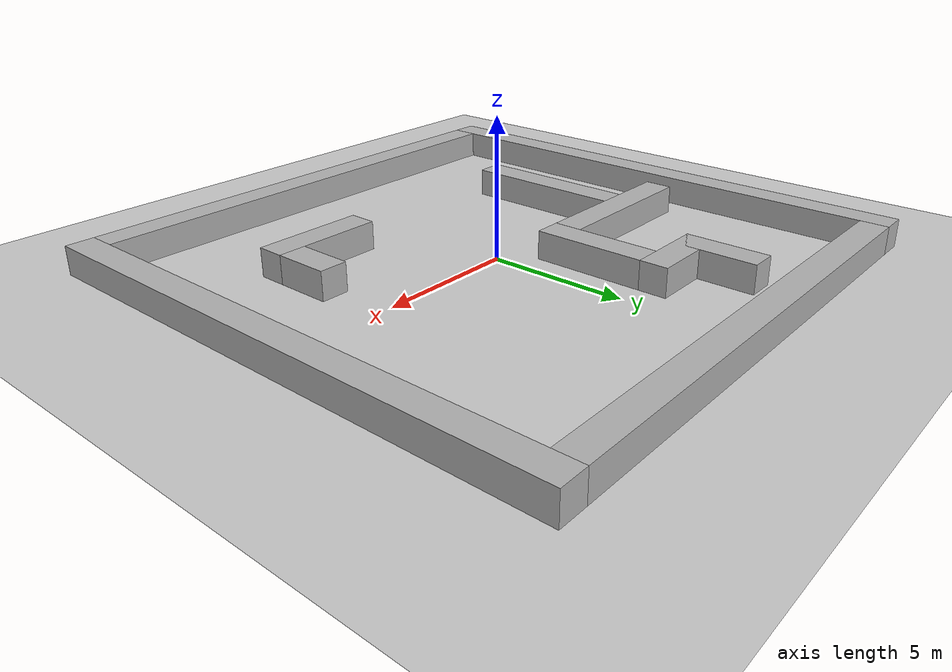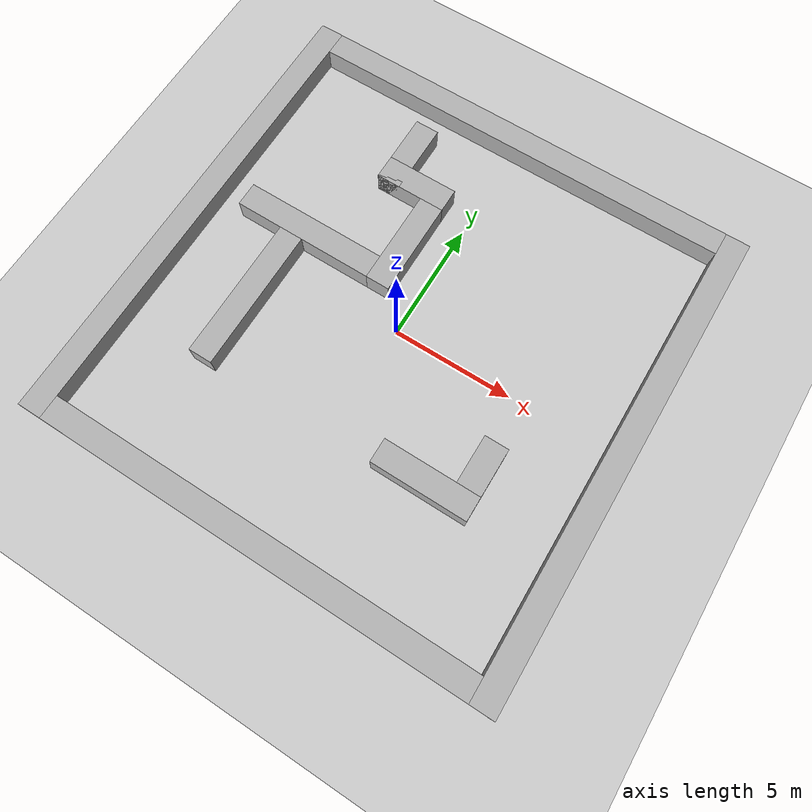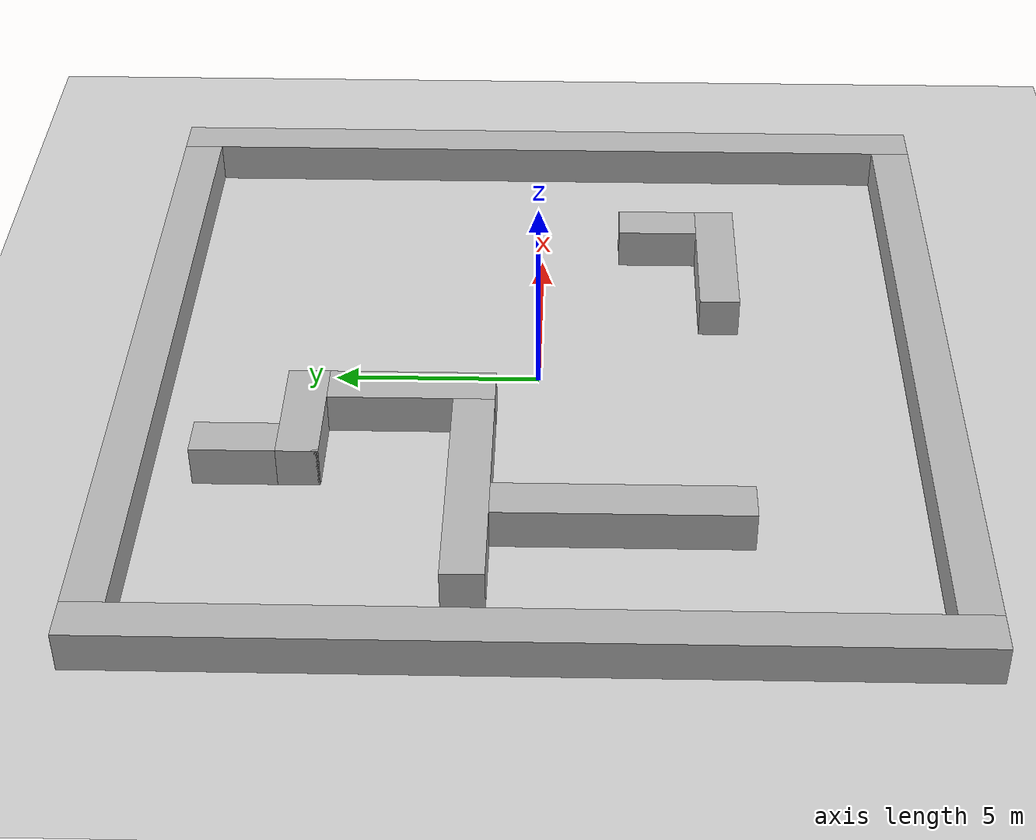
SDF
<sdf version='1.10'>
  <world name='playground'>
    <physics name='1ms' type='ignored'>
      <max_step_size>0.001</max_step_size>
      <real_time_factor>1</real_time_factor>
      <real_time_update_rate>1000</real_time_update_rate>
    </physics>
    <plugin name='gz::sim::systems::Physics' filename='gz-sim-physics-system'/>
    <plugin name='gz::sim::systems::UserCommands' filename='gz-sim-user-commands-system'/>
    <plugin name='gz::sim::systems::SceneBroadcaster' filename='gz-sim-scene-broadcaster-system'/>
    <plugin name='gz::sim::systems::Contact' filename='gz-sim-contact-system'/>
    <gravity>0 0 -9.8000000000000007</gravity>
    <magnetic_field>5.5644999999999998e-06 2.2875799999999999e-05 -4.2388400000000002e-05</magnetic_field>
    <atmosphere type='adiabatic'/>
    <scene>
      <ambient>0.400000006 0.400000006 0.400000006 1</ambient>
      <background>0.699999988 0.699999988 0.699999988 1</background>
      <shadows>true</shadows>
    </scene>
    <model name='ground_plane'>
      <static>true</static>
      <link name='link'>
        <collision name='collision'>
          <geometry>
            <plane>
              <normal>0 0 1</normal>
              <size>100 100</size>
            </plane>
          </geometry>
          <surface>
            <friction>
              <ode/>
            </friction>
            <bounce/>
            <contact/>
          </surface>
        </collision>
        <visual name='visual'>
          <geometry>
            <plane>
              <normal>0 0 1</normal>
              <size>100 100</size>
            </plane>
          </geometry>
          <material>
            <ambient>0.800000012 0.800000012 0.800000012 1</ambient>
            <diffuse>0.800000012 0.800000012 0.800000012 1</diffuse>
            <specular>0.800000012 0.800000012 0.800000012 1</specular>
          </material>
        </visual>
        <pose>0 0 0 0 0 0</pose>
        <inertial>
          <pose>0 0 0 0 0 0</pose>
          <mass>1</mass>
          <inertia>
            <ixx>1</ixx>
            <ixy>0</ixy>
            <ixz>0</ixz>
            <iyy>1</iyy>
            <iyz>0</iyz>
            <izz>1</izz>
          </inertia>
        </inertial>
        <enable_wind>false</enable_wind>
      </link>
      <pose>0 0 0 0 0 0</pose>
      <self_collide>false</self_collide>
    </model>

    <model name='box_0'>
      <pose>9.5 0.0 0.0 0.0 0.0 0.0</pose>
      <link name='box_link'>
        <inertial>
          <inertia>
            <ixx>0.16666</ixx>
            <ixy>0</ixy>
            <ixz>0</ixz>
            <iyy>0.16666</iyy>
            <iyz>0</iyz>
            <izz>0.16666</izz>
          </inertia>
          <mass>1</mass>
          <pose>0 0 0 0 0 0</pose>
        </inertial>
        <collision name='box_collision'>
          <geometry>
            <box>
              <size>1 20 2</size>
            </box>
          </geometry>
          <surface>
            <friction>
              <ode/>
            </friction>
            <bounce/>
            <contact/>
          </surface>
        </collision>
        <visual name='box_visual'>
          <geometry>
            <box>
              <size>1 20 2</size>
            </box>
          </geometry>
          <material>
            <ambient>0.300000012 0.300000012 0.300000012 1</ambient>
            <diffuse>0.699999988 0.699999988 0.699999988 1</diffuse>
            <specular>1 1 1 1</specular>
          </material>
        </visual>
        <pose>0 0 0 0 0 0</pose>
        <enable_wind>false</enable_wind>
      </link>
      <static>true</static>
      <self_collide>false</self_collide>
    </model>

    <model name='box_1'>
      <pose>-9.5 0.0 0.0 0.0 0.0 0.0</pose>
      <link name='box_link'>
        <inertial>
          <inertia>
            <ixx>0.16666</ixx>
            <ixy>0</ixy>
            <ixz>0</ixz>
            <iyy>0.16666</iyy>
            <iyz>0</iyz>
            <izz>0.16666</izz>
          </inertia>
          <mass>1</mass>
          <pose>0 0 0 0 0 0</pose>
        </inertial>
        <collision name='box_collision'>
          <geometry>
            <box>
              <size>1 20 2</size>
            </box>
          </geometry>
          <surface>
            <friction>
              <ode/>
            </friction>
            <bounce/>
            <contact/>
          </surface>
        </collision>
        <visual name='box_visual'>
          <geometry>
            <box>
              <size>1 20 2</size>
            </box>
          </geometry>
          <material>
            <ambient>0.300000012 0.300000012 0.300000012 1</ambient>
            <diffuse>0.699999988 0.699999988 0.699999988 1</diffuse>
            <specular>1 1 1 1</specular>
          </material>
        </visual>
        <pose>0 0 0 0 0 0</pose>
        <enable_wind>false</enable_wind>
      </link>
      <static>true</static>
      <self_collide>false</self_collide>
    </model>

    <model name='box_2'>
      <pose>0.0 9.5 0.0 0.0 0.0 0.0</pose>
      <link name='box_link'>
        <inertial>
          <inertia>
            <ixx>0.16666</ixx>
            <ixy>0</ixy>
            <ixz>0</ixz>
            <iyy>0.16666</iyy>
            <iyz>0</iyz>
            <izz>0.16666</izz>
          </inertia>
          <mass>1</mass>
          <pose>0 0 0 0 0 0</pose>
        </inertial>
        <collision name='box_collision'>
          <geometry>
            <box>
              <size>18 1 2</size>
            </box>
          </geometry>
          <surface>
            <friction>
              <ode/>
            </friction>
            <bounce/>
            <contact/>
          </surface>
        </collision>
        <visual name='box_visual'>
          <geometry>
            <box>
              <size>18 1 2</size>
            </box>
          </geometry>
          <material>
            <ambient>0.300000012 0.300000012 0.300000012 1</ambient>
            <diffuse>0.699999988 0.699999988 0.699999988 1</diffuse>
            <specular>1 1 1 1</specular>
          </material>
        </visual>
        <pose>0 0 0 0 0 0</pose>
        <enable_wind>false</enable_wind>
      </link>
      <static>true</static>
      <self_collide>false</self_collide>
    </model>

    <model name='box_3'>
      <pose>0.0 -9.5 0.0 0.0 0.0 0.0</pose>
      <link name='box_link'>
        <inertial>
          <inertia>
            <ixx>0.16666</ixx>
            <ixy>0</ixy>
            <ixz>0</ixz>
            <iyy>0.16666</iyy>
            <iyz>0</iyz>
            <izz>0.16666</izz>
          </inertia>
          <mass>1</mass>
          <pose>0 0 0 0 0 0</pose>
        </inertial>
        <collision name='box_collision'>
          <geometry>
            <box>
              <size>18 1 2</size>
            </box>
          </geometry>
          <surface>
            <friction>
              <ode/>
            </friction>
            <bounce/>
            <contact/>
          </surface>
        </collision>
        <visual name='box_visual'>
          <geometry>
            <box>
              <size>18 1 2</size>
            </box>
          </geometry>
          <material>
            <ambient>0.300000012 0.300000012 0.300000012 1</ambient>
            <diffuse>0.699999988 0.699999988 0.699999988 1</diffuse>
            <specular>1 1 1 1</specular>
          </material>
        </visual>
        <pose>0 0 0 0 0 0</pose>
        <enable_wind>false</enable_wind>
      </link>
      <static>true</static>
      <self_collide>false</self_collide>
    </model>

    <model name='box_4'>
      <pose>4.0 -4.5 0.0 0.0 0.0 0.0</pose>
      <link name='box_link'>
        <inertial>
          <inertia>
            <ixx>0.16666</ixx>
            <ixy>0</ixy>
            <ixz>0</ixz>
            <iyy>0.16666</iyy>
            <iyz>0</iyz>
            <izz>0.16666</izz>
          </inertia>
          <mass>1</mass>
          <pose>0 0 0 0 0 0</pose>
        </inertial>
        <collision name='box_collision'>
          <geometry>
            <box>
              <size>4 1 2</size>
            </box>
          </geometry>
          <surface>
            <friction>
              <ode/>
            </friction>
            <bounce/>
            <contact/>
          </surface>
        </collision>
        <visual name='box_visual'>
          <geometry>
            <box>
              <size>4 1 2</size>
            </box>
          </geometry>
          <material>
            <ambient>0.300000012 0.300000012 0.300000012 1</ambient>
            <diffuse>0.699999988 0.699999988 0.699999988 1</diffuse>
            <specular>1 1 1 1</specular>
          </material>
        </visual>
        <pose>0 0 0 0 0 0</pose>
        <enable_wind>false</enable_wind>
      </link>
      <static>true</static>
      <self_collide>false</self_collide>
    </model>

    <model name='box_5'>
      <pose>5.5 -3.0 0.0 0.0 0.0 0.0</pose>
      <link name='box_link'>
        <inertial>
          <inertia>
            <ixx>0.16666</ixx>
            <ixy>0</ixy>
            <ixz>0</ixz>
            <iyy>0.16666</iyy>
            <iyz>0</iyz>
            <izz>0.16666</izz>
          </inertia>
          <mass>1</mass>
          <pose>0 0 0 0 0 0</pose>
        </inertial>
        <collision name='box_collision'>
          <geometry>
            <box>
              <size>1 2 2</size>
            </box>
          </geometry>
          <surface>
            <friction>
              <ode/>
            </friction>
            <bounce/>
            <contact/>
          </surface>
        </collision>
        <visual name='box_visual'>
          <geometry>
            <box>
              <size>1 2 2</size>
            </box>
          </geometry>
          <material>
            <ambient>0.300000012 0.300000012 0.300000012 1</ambient>
            <diffuse>0.699999988 0.699999988 0.699999988 1</diffuse>
            <specular>1 1 1 1</specular>
          </material>
        </visual>
        <pose>0 0 0 0 0 0</pose>
        <enable_wind>false</enable_wind>
      </link>
      <static>true</static>
      <self_collide>false</self_collide>
    </model>

    <model name='box_6'>
      <pose>-3.5 6.5 0.0 0.0 0.0 0.0</pose>
      <link name='box_link'>
        <inertial>
          <inertia>
            <ixx>0.16666</ixx>
            <ixy>0</ixy>
            <ixz>0</ixz>
            <iyy>0.16666</iyy>
            <iyz>0</iyz>
            <izz>0.16666</izz>
          </inertia>
          <mass>1</mass>
          <pose>0 0 0 0 0 0</pose>
        </inertial>
        <collision name='box_collision'>
          <geometry>
            <box>
              <size>1 3 2</size>
            </box>
          </geometry>
          <surface>
            <friction>
              <ode/>
            </friction>
            <bounce/>
            <contact/>
          </surface>
        </collision>
        <visual name='box_visual'>
          <geometry>
            <box>
              <size>1 3 2</size>
            </box>
          </geometry>
          <material>
            <ambient>0.300000012 0.300000012 0.300000012 1</ambient>
            <diffuse>0.699999988 0.699999988 0.699999988 1</diffuse>
            <specular>1 1 1 1</specular>
          </material>
        </visual>
        <pose>0 0 0 0 0 0</pose>
        <enable_wind>false</enable_wind>
      </link>
      <static>true</static>
      <self_collide>false</self_collide>
    </model>

    <model name='box_7'>
      <pose>-2.5 5.5 0.0 0.0 0.0 0.0</pose>
      <link name='box_link'>
        <inertial>
          <inertia>
            <ixx>0.16666</ixx>
            <ixy>0</ixy>
            <ixz>0</ixz>
            <iyy>0.16666</iyy>
            <iyz>0</iyz>
            <izz>0.16666</izz>
          </inertia>
          <mass>1</mass>
          <pose>0 0 0 0 0 0</pose>
        </inertial>
        <collision name='box_collision'>
          <geometry>
            <box>
              <size>3 1 2</size>
            </box>
          </geometry>
          <surface>
            <friction>
              <ode/>
            </friction>
            <bounce/>
            <contact/>
          </surface>
        </collision>
        <visual name='box_visual'>
          <geometry>
            <box>
              <size>3 1 2</size>
            </box>
          </geometry>
          <material>
            <ambient>0.300000012 0.300000012 0.300000012 1</ambient>
            <diffuse>0.699999988 0.699999988 0.699999988 1</diffuse>
            <specular>1 1 1 1</specular>
          </material>
        </visual>
        <pose>0 0 0 0 0 0</pose>
        <enable_wind>false</enable_wind>
      </link>
      <static>true</static>
      <self_collide>false</self_collide>
    </model>

    <model name='box_8'>
      <pose>-1.5 3.0 0.0 0.0 0.0 0.0</pose>
      <link name='box_link'>
        <inertial>
          <inertia>
            <ixx>0.16666</ixx>
            <ixy>0</ixy>
            <ixz>0</ixz>
            <iyy>0.16666</iyy>
            <iyz>0</iyz>
            <izz>0.16666</izz>
          </inertia>
          <mass>1</mass>
          <pose>0 0 0 0 0 0</pose>
        </inertial>
        <collision name='box_collision'>
          <geometry>
            <box>
              <size>1 4 2</size>
            </box>
          </geometry>
          <surface>
            <friction>
              <ode/>
            </friction>
            <bounce/>
            <contact/>
          </surface>
        </collision>
        <visual name='box_visual'>
          <geometry>
            <box>
              <size>1 4 2</size>
            </box>
          </geometry>
          <material>
            <ambient>0.300000012 0.300000012 0.300000012 1</ambient>
            <diffuse>0.699999988 0.699999988 0.699999988 1</diffuse>
            <specular>1 1 1 1</specular>
          </material>
        </visual>
        <pose>0 0 0 0 0 0</pose>
        <enable_wind>false</enable_wind>
      </link>
      <static>true</static>
      <self_collide>false</self_collide>
    </model>

    <model name='box_9'>
      <pose>-5.0 1.5 0.0 0.0 0.0 0.0</pose>
      <link name='box_link'>
        <inertial>
          <inertia>
            <ixx>0.16666</ixx>
            <ixy>0</ixy>
            <ixz>0</ixz>
            <iyy>0.16666</iyy>
            <iyz>0</iyz>
            <izz>0.16666</izz>
          </inertia>
          <mass>1</mass>
          <pose>0 0 0 0 0 0</pose>
        </inertial>
        <collision name='box_collision'>
          <geometry>
            <box>
              <size>6 1 2</size>
            </box>
          </geometry>
          <surface>
            <friction>
              <ode/>
            </friction>
            <bounce/>
            <contact/>
          </surface>
        </collision>
        <visual name='box_visual'>
          <geometry>
            <box>
              <size>6 1 2</size>
            </box>
          </geometry>
          <material>
            <ambient>0.300000012 0.300000012 0.300000012 1</ambient>
            <diffuse>0.699999988 0.699999988 0.699999988 1</diffuse>
            <specular>1 1 1 1</specular>
          </material>
        </visual>
        <pose>0 0 0 0 0 0</pose>
        <enable_wind>false</enable_wind>
      </link>
      <static>true</static>
      <self_collide>false</self_collide>
    </model>

    <model name='box_10'>
      <pose>-5.5 -2.0 0.0 0.0 0.0 0.0</pose>
      <link name='box_link'>
        <inertial>
          <inertia>
            <ixx>0.16666</ixx>
            <ixy>0</ixy>
            <ixz>0</ixz>
            <iyy>0.16666</iyy>
            <iyz>0</iyz>
            <izz>0.16666</izz>
          </inertia>
          <mass>1</mass>
          <pose>0 0 0 0 0 0</pose>
        </inertial>
        <collision name='box_collision'>
          <geometry>
            <box>
              <size>1 6 2</size>
            </box>
          </geometry>
          <surface>
            <friction>
              <ode/>
            </friction>
            <bounce/>
            <contact/>
          </surface>
        </collision>
        <visual name='box_visual'>
          <geometry>
            <box>
              <size>1 6 2</size>
            </box>
          </geometry>
          <material>
            <ambient>0.300000012 0.300000012 0.300000012 1</ambient>
            <diffuse>0.699999988 0.699999988 0.699999988 1</diffuse>
            <specular>1 1 1 1</specular>
          </material>
        </visual>
        <pose>0 0 0 0 0 0</pose>
        <enable_wind>false</enable_wind>
      </link>
      <static>true</static>
      <self_collide>false</self_collide>
    </model>

    <light name='sun' type='directional'>
      <pose>0 0 10 0 0 0</pose>
      <cast_shadows>true</cast_shadows>
      <intensity>1</intensity>
      <direction>-0.5 0.10000000000000001 -0.90000000000000002</direction>
      <diffuse>0.800000012 0.800000012 0.800000012 1</diffuse>
      <specular>0.200000003 0.200000003 0.200000003 1</specular>
      <attenuation>
        <range>1000</range>
        <linear>0.01</linear>
        <constant>0.90000000000000002</constant>
        <quadratic>0.001</quadratic>
      </attenuation>
      <spot>
        <inner_angle>0</inner_angle>
        <outer_angle>0</outer_angle>
        <falloff>0</falloff>
      </spot>
    </light>

  </world>
</sdf>
